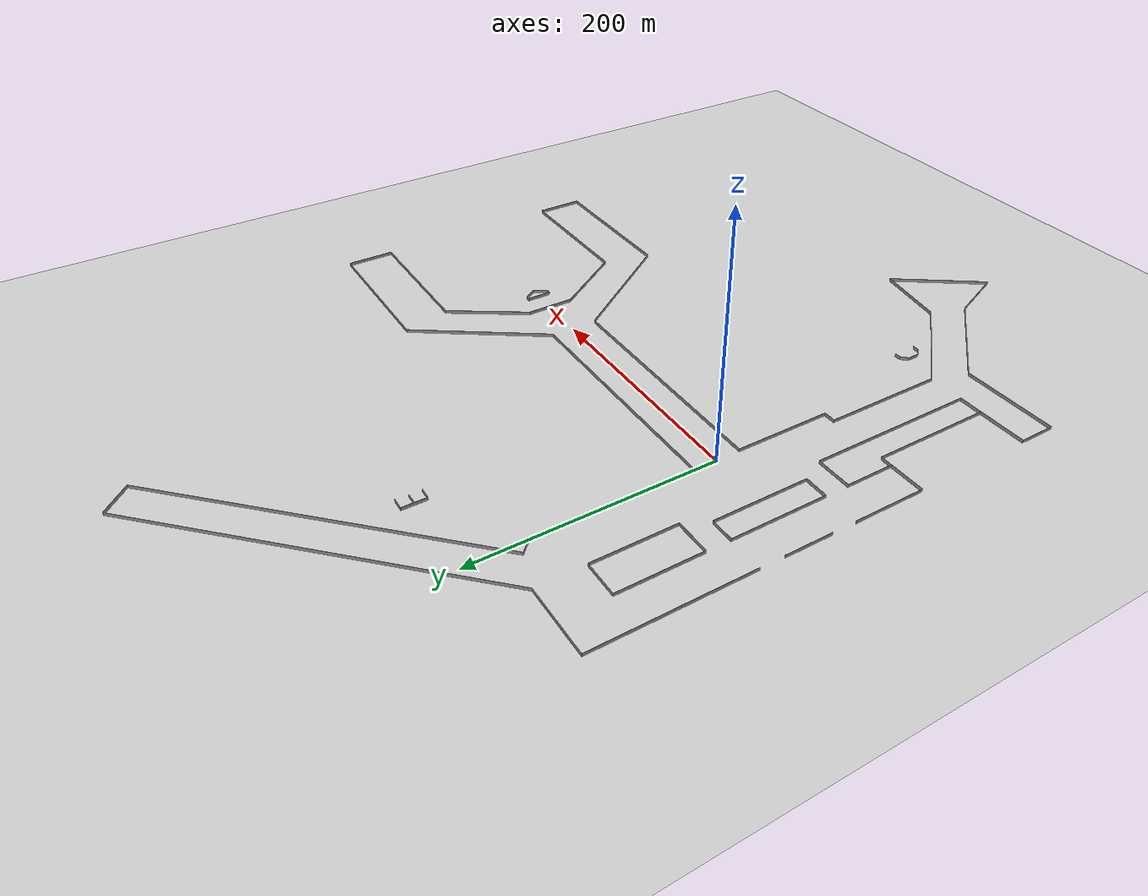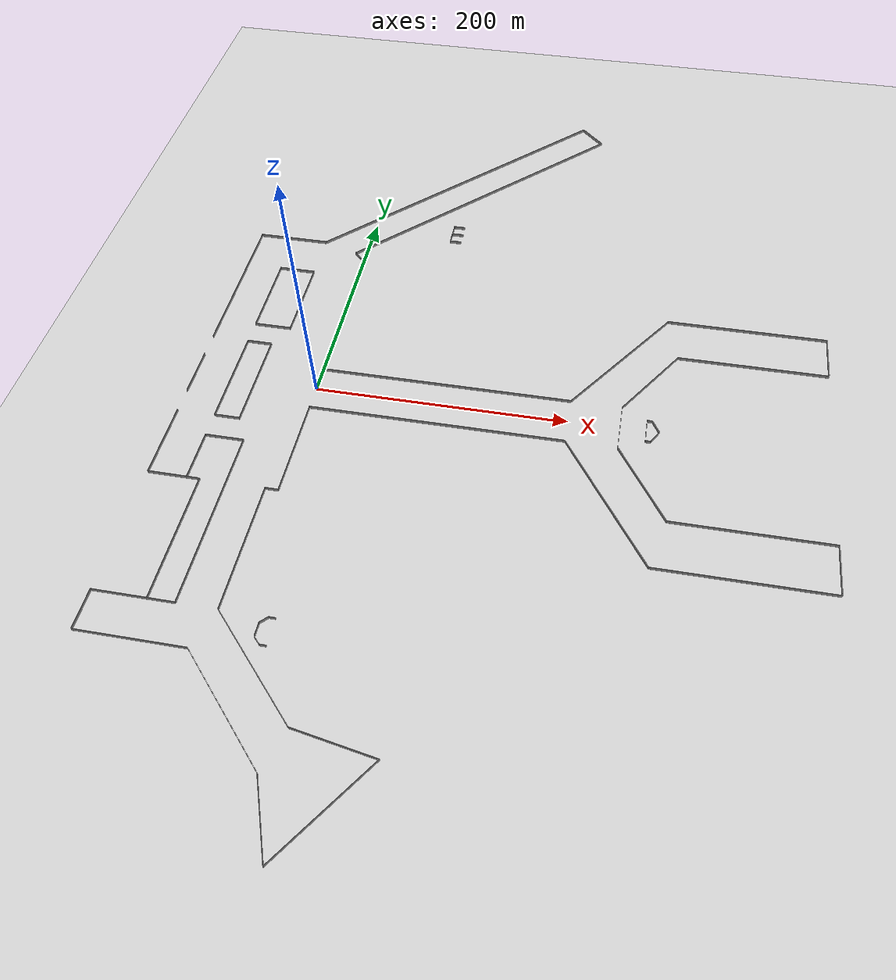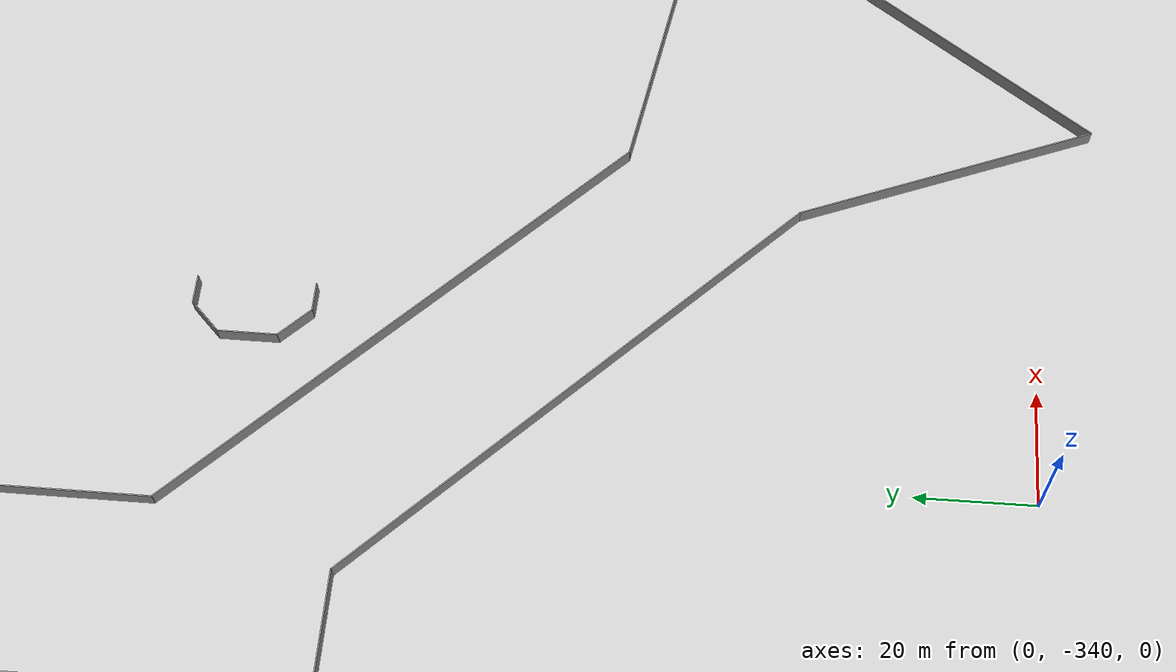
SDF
<?xml version="1.0" ?>

    <!-- this file is auto generated using pedsim_gazebo_plugin pkg -->
    <sdf version="1.5">
      <world name="default">

      <!-- Ground Plane -->

      <include>
        <uri>model://ground_plane</uri>
      </include>

      <include>
        <uri>model://sun</uri>
      </include>

     <model name='grey_wall_1'>
      <static>1</static>
      <link name='link'>

	  <pose frame=''>-60.0 -230.0  1.4 0 0 -0.0</pose>

        <collision name='collision'>
          <geometry>
            <box>

	     <size> 80.0 .2  2.8 </size>

      	   </box>
          </geometry>
          <max_contacts>10</max_contacts>
          <surface>
            <contact>
              <ode/>
            </contact>
            <bounce/>
            <friction>
              <torsional>
                <ode/>
              </torsional>
              <ode/>
            </friction>
          </surface>
        </collision>
        <visual name='visual'>
          <cast_shadows>0</cast_shadows>
          <geometry>
            <box>

	     <size> 80.0 .2  2.8 </size>

      	   </box>
       </geometry>
          <material>
            <script>
              <uri>model://grey_wall/materials/scripts</uri>
              <uri>model://grey_wall/materials/textures</uri>
              <name>vrc/grey_wall</name>
            </script>
          </material>
        </visual>
        <self_collide>0</self_collide>
        <enable_wind>0</enable_wind>
        <kinematic>0</kinematic>
      </link>
    </model>

     <model name='grey_wall_2'>
      <static>1</static>
      <link name='link'>

	  <pose frame=''>-70.0 -200.0  1.4 0 0 -0.0</pose>

        <collision name='collision'>
          <geometry>
            <box>

	     <size> 60.0 .2  2.8 </size>

      	   </box>
          </geometry>
          <max_contacts>10</max_contacts>
          <surface>
            <contact>
              <ode/>
            </contact>
            <bounce/>
            <friction>
              <torsional>
                <ode/>
              </torsional>
              <ode/>
            </friction>
          </surface>
        </collision>
        <visual name='visual'>
          <cast_shadows>0</cast_shadows>
          <geometry>
            <box>

	     <size> 60.0 .2  2.8 </size>

      	   </box>
       </geometry>
          <material>
            <script>
              <uri>model://grey_wall/materials/scripts</uri>
              <uri>model://grey_wall/materials/textures</uri>
              <name>vrc/grey_wall</name>
            </script>
          </material>
        </visual>
        <self_collide>0</self_collide>
        <enable_wind>0</enable_wind>
        <kinematic>0</kinematic>
      </link>
    </model>

     <model name='grey_wall_3'>
      <static>1</static>
      <link name='link'>

	  <pose frame=''>-80.0 -100.0  1.4 0 0 0.0</pose>

        <collision name='collision'>
          <geometry>
            <box>

	     <size> 40.0 .2  2.8 </size>

      	   </box>
          </geometry>
          <max_contacts>10</max_contacts>
          <surface>
            <contact>
              <ode/>
            </contact>
            <bounce/>
            <friction>
              <torsional>
                <ode/>
              </torsional>
              <ode/>
            </friction>
          </surface>
        </collision>
        <visual name='visual'>
          <cast_shadows>0</cast_shadows>
          <geometry>
            <box>

	     <size> 40.0 .2  2.8 </size>

      	   </box>
       </geometry>
          <material>
            <script>
              <uri>model://grey_wall/materials/scripts</uri>
              <uri>model://grey_wall/materials/textures</uri>
              <name>vrc/grey_wall</name>
            </script>
          </material>
        </visual>
        <self_collide>0</self_collide>
        <enable_wind>0</enable_wind>
        <kinematic>0</kinematic>
      </link>
    </model>

     <model name='grey_wall_4'>
      <static>1</static>
      <link name='link'>

	  <pose frame=''>-100.0 -70.0  1.4 0 0 1.57</pose>

        <collision name='collision'>
          <geometry>
            <box>

	     <size> 60.0 .2  2.8 </size>

      	   </box>
          </geometry>
          <max_contacts>10</max_contacts>
          <surface>
            <contact>
              <ode/>
            </contact>
            <bounce/>
            <friction>
              <torsional>
                <ode/>
              </torsional>
              <ode/>
            </friction>
          </surface>
        </collision>
        <visual name='visual'>
          <cast_shadows>0</cast_shadows>
          <geometry>
            <box>

	     <size> 60.0 .2  2.8 </size>

      	   </box>
       </geometry>
          <material>
            <script>
              <uri>model://grey_wall/materials/scripts</uri>
              <uri>model://grey_wall/materials/textures</uri>
              <name>vrc/grey_wall</name>
            </script>
          </material>
        </visual>
        <self_collide>0</self_collide>
        <enable_wind>0</enable_wind>
        <kinematic>0</kinematic>
      </link>
    </model>

     <model name='grey_wall_5'>
      <static>1</static>
      <link name='link'>

	  <pose frame=''>0.0 85.0  1.4 0 0 1.57</pose>

        <collision name='collision'>
          <geometry>
            <box>

	     <size> 130.0 .2  2.8 </size>

      	   </box>
          </geometry>
          <max_contacts>10</max_contacts>
          <surface>
            <contact>
              <ode/>
            </contact>
            <bounce/>
            <friction>
              <torsional>
                <ode/>
              </torsional>
              <ode/>
            </friction>
          </surface>
        </collision>
        <visual name='visual'>
          <cast_shadows>0</cast_shadows>
          <geometry>
            <box>

	     <size> 130.0 .2  2.8 </size>

      	   </box>
       </geometry>
          <material>
            <script>
              <uri>model://grey_wall/materials/scripts</uri>
              <uri>model://grey_wall/materials/textures</uri>
              <name>vrc/grey_wall</name>
            </script>
          </material>
        </visual>
        <self_collide>0</self_collide>
        <enable_wind>0</enable_wind>
        <kinematic>0</kinematic>
      </link>
    </model>

     <model name='grey_wall_6'>
      <static>1</static>
      <link name='link'>

	  <pose frame=''>-100.0 135.0  1.4 0 0 1.57</pose>

        <collision name='collision'>
          <geometry>
            <box>

	     <size> 70.0 .2  2.8 </size>

      	   </box>
          </geometry>
          <max_contacts>10</max_contacts>
          <surface>
            <contact>
              <ode/>
            </contact>
            <bounce/>
            <friction>
              <torsional>
                <ode/>
              </torsional>
              <ode/>
            </friction>
          </surface>
        </collision>
        <visual name='visual'>
          <cast_shadows>0</cast_shadows>
          <geometry>
            <box>

	     <size> 70.0 .2  2.8 </size>

      	   </box>
       </geometry>
          <material>
            <script>
              <uri>model://grey_wall/materials/scripts</uri>
              <uri>model://grey_wall/materials/textures</uri>
              <name>vrc/grey_wall</name>
            </script>
          </material>
        </visual>
        <self_collide>0</self_collide>
        <enable_wind>0</enable_wind>
        <kinematic>0</kinematic>
      </link>
    </model>

     <model name='grey_wall_7'>
      <static>1</static>
      <link name='link'>

	  <pose frame=''>-70.0 170.0  1.4 0 0 0.0</pose>

        <collision name='collision'>
          <geometry>
            <box>

	     <size> 60.0 .2  2.8 </size>

      	   </box>
          </geometry>
          <max_contacts>10</max_contacts>
          <surface>
            <contact>
              <ode/>
            </contact>
            <bounce/>
            <friction>
              <torsional>
                <ode/>
              </torsional>
              <ode/>
            </friction>
          </surface>
        </collision>
        <visual name='visual'>
          <cast_shadows>0</cast_shadows>
          <geometry>
            <box>

	     <size> 60.0 .2  2.8 </size>

      	   </box>
       </geometry>
          <material>
            <script>
              <uri>model://grey_wall/materials/scripts</uri>
              <uri>model://grey_wall/materials/textures</uri>
              <name>vrc/grey_wall</name>
            </script>
          </material>
        </visual>
        <self_collide>0</self_collide>
        <enable_wind>0</enable_wind>
        <kinematic>0</kinematic>
      </link>
    </model>

     <model name='grey_wall_8'>
      <static>1</static>
      <link name='link'>

	  <pose frame=''>100.0 -20.0  1.4 0 0 0.0</pose>

        <collision name='collision'>
          <geometry>
            <box>

	     <size> 200.0 .2  2.8 </size>

      	   </box>
          </geometry>
          <max_contacts>10</max_contacts>
          <surface>
            <contact>
              <ode/>
            </contact>
            <bounce/>
            <friction>
              <torsional>
                <ode/>
              </torsional>
              <ode/>
            </friction>
          </surface>
        </collision>
        <visual name='visual'>
          <cast_shadows>0</cast_shadows>
          <geometry>
            <box>

	     <size> 200.0 .2  2.8 </size>

      	   </box>
       </geometry>
          <material>
            <script>
              <uri>model://grey_wall/materials/scripts</uri>
              <uri>model://grey_wall/materials/textures</uri>
              <name>vrc/grey_wall</name>
            </script>
          </material>
        </visual>
        <self_collide>0</self_collide>
        <enable_wind>0</enable_wind>
        <kinematic>0</kinematic>
      </link>
    </model>

     <model name='grey_wall_9'>
      <static>1</static>
      <link name='link'>

	  <pose frame=''>100.0 20.0  1.4 0 0 0.0</pose>

        <collision name='collision'>
          <geometry>
            <box>

	     <size> 200.0 .2  2.8 </size>

      	   </box>
          </geometry>
          <max_contacts>10</max_contacts>
          <surface>
            <contact>
              <ode/>
            </contact>
            <bounce/>
            <friction>
              <torsional>
                <ode/>
              </torsional>
              <ode/>
            </friction>
          </surface>
        </collision>
        <visual name='visual'>
          <cast_shadows>0</cast_shadows>
          <geometry>
            <box>

	     <size> 200.0 .2  2.8 </size>

      	   </box>
       </geometry>
          <material>
            <script>
              <uri>model://grey_wall/materials/scripts</uri>
              <uri>model://grey_wall/materials/textures</uri>
              <name>vrc/grey_wall</name>
            </script>
          </material>
        </visual>
        <self_collide>0</self_collide>
        <enable_wind>0</enable_wind>
        <kinematic>0</kinematic>
      </link>
    </model>

     <model name='grey_wall_10'>
      <static>1</static>
      <link name='link'>

	  <pose frame=''>235.0 70.0  1.4 0 0 0.960070362406</pose>

        <collision name='collision'>
          <geometry>
            <box>

	     <size> 122.065556157 .2  2.8 </size>

      	   </box>
          </geometry>
          <max_contacts>10</max_contacts>
          <surface>
            <contact>
              <ode/>
            </contact>
            <bounce/>
            <friction>
              <torsional>
                <ode/>
              </torsional>
              <ode/>
            </friction>
          </surface>
        </collision>
        <visual name='visual'>
          <cast_shadows>0</cast_shadows>
          <geometry>
            <box>

	     <size> 122.065556157 .2  2.8 </size>

      	   </box>
       </geometry>
          <material>
            <script>
              <uri>model://grey_wall/materials/scripts</uri>
              <uri>model://grey_wall/materials/textures</uri>
              <name>vrc/grey_wall</name>
            </script>
          </material>
        </visual>
        <self_collide>0</self_collide>
        <enable_wind>0</enable_wind>
        <kinematic>0</kinematic>
      </link>
    </model>

     <model name='grey_wall_11'>
      <static>1</static>
      <link name='link'>

	  <pose frame=''>235.0 -70.0  1.4 0 0 -0.960070362406</pose>

        <collision name='collision'>
          <geometry>
            <box>

	     <size> 122.065556157 .2  2.8 </size>

      	   </box>
          </geometry>
          <max_contacts>10</max_contacts>
          <surface>
            <contact>
              <ode/>
            </contact>
            <bounce/>
            <friction>
              <torsional>
                <ode/>
              </torsional>
              <ode/>
            </friction>
          </surface>
        </collision>
        <visual name='visual'>
          <cast_shadows>0</cast_shadows>
          <geometry>
            <box>

	     <size> 122.065556157 .2  2.8 </size>

      	   </box>
       </geometry>
          <material>
            <script>
              <uri>model://grey_wall/materials/scripts</uri>
              <uri>model://grey_wall/materials/textures</uri>
              <name>vrc/grey_wall</name>
            </script>
          </material>
        </visual>
        <self_collide>0</self_collide>
        <enable_wind>0</enable_wind>
        <kinematic>0</kinematic>
      </link>
    </model>

     <model name='grey_wall_12'>
      <static>1</static>
      <link name='link'>

	  <pose frame=''>260.0 50.0  1.4 0 0 0.982793723247</pose>

        <collision name='collision'>
          <geometry>
            <box>

	     <size> 72.1110255093 .2  2.8 </size>

      	   </box>
          </geometry>
          <max_contacts>10</max_contacts>
          <surface>
            <contact>
              <ode/>
            </contact>
            <bounce/>
            <friction>
              <torsional>
                <ode/>
              </torsional>
              <ode/>
            </friction>
          </surface>
        </collision>
        <visual name='visual'>
          <cast_shadows>0</cast_shadows>
          <geometry>
            <box>

	     <size> 72.1110255093 .2  2.8 </size>

      	   </box>
       </geometry>
          <material>
            <script>
              <uri>model://grey_wall/materials/scripts</uri>
              <uri>model://grey_wall/materials/textures</uri>
              <name>vrc/grey_wall</name>
            </script>
          </material>
        </visual>
        <self_collide>0</self_collide>
        <enable_wind>0</enable_wind>
        <kinematic>0</kinematic>
      </link>
    </model>

     <model name='grey_wall_13'>
      <static>1</static>
      <link name='link'>

	  <pose frame=''>240.0 0.0  1.4 0 0 1.57</pose>

        <collision name='collision'>
          <geometry>
            <box>

	     <size> 40.0 .2  2.8 </size>

      	   </box>
          </geometry>
          <max_contacts>10</max_contacts>
          <surface>
            <contact>
              <ode/>
            </contact>
            <bounce/>
            <friction>
              <torsional>
                <ode/>
              </torsional>
              <ode/>
            </friction>
          </surface>
        </collision>
        <visual name='visual'>
          <cast_shadows>0</cast_shadows>
          <geometry>
            <box>

	     <size> 40.0 .2  2.8 </size>

      	   </box>
       </geometry>
          <material>
            <script>
              <uri>model://grey_wall/materials/scripts</uri>
              <uri>model://grey_wall/materials/textures</uri>
              <name>vrc/grey_wall</name>
            </script>
          </material>
        </visual>
        <self_collide>0</self_collide>
        <enable_wind>0</enable_wind>
        <kinematic>0</kinematic>
      </link>
    </model>

     <model name='grey_wall_14'>
      <static>1</static>
      <link name='link'>

	  <pose frame=''>260.0 -50.0  1.4 0 0 -0.982793723247</pose>

        <collision name='collision'>
          <geometry>
            <box>

	     <size> 72.1110255093 .2  2.8 </size>

      	   </box>
          </geometry>
          <max_contacts>10</max_contacts>
          <surface>
            <contact>
              <ode/>
            </contact>
            <bounce/>
            <friction>
              <torsional>
                <ode/>
              </torsional>
              <ode/>
            </friction>
          </surface>
        </collision>
        <visual name='visual'>
          <cast_shadows>0</cast_shadows>
          <geometry>
            <box>

	     <size> 72.1110255093 .2  2.8 </size>

      	   </box>
       </geometry>
          <material>
            <script>
              <uri>model://grey_wall/materials/scripts</uri>
              <uri>model://grey_wall/materials/textures</uri>
              <name>vrc/grey_wall</name>
            </script>
          </material>
        </visual>
        <self_collide>0</self_collide>
        <enable_wind>0</enable_wind>
        <kinematic>0</kinematic>
      </link>
    </model>

     <model name='grey_wall_15'>
      <static>1</static>
      <link name='link'>

	  <pose frame=''>0.0 -60.0  1.4 0 0 1.57</pose>

        <collision name='collision'>
          <geometry>
            <box>

	     <size> 80.0 .2  2.8 </size>

      	   </box>
          </geometry>
          <max_contacts>10</max_contacts>
          <surface>
            <contact>
              <ode/>
            </contact>
            <bounce/>
            <friction>
              <torsional>
                <ode/>
              </torsional>
              <ode/>
            </friction>
          </surface>
        </collision>
        <visual name='visual'>
          <cast_shadows>0</cast_shadows>
          <geometry>
            <box>

	     <size> 80.0 .2  2.8 </size>

      	   </box>
       </geometry>
          <material>
            <script>
              <uri>model://grey_wall/materials/scripts</uri>
              <uri>model://grey_wall/materials/textures</uri>
              <name>vrc/grey_wall</name>
            </script>
          </material>
        </visual>
        <self_collide>0</self_collide>
        <enable_wind>0</enable_wind>
        <kinematic>0</kinematic>
      </link>
    </model>

     <model name='grey_wall_16'>
      <static>1</static>
      <link name='link'>

	  <pose frame=''>340.0 80.0  1.4 0 0 0.0</pose>

        <collision name='collision'>
          <geometry>
            <box>

	     <size> 120.0 .2  2.8 </size>

      	   </box>
          </geometry>
          <max_contacts>10</max_contacts>
          <surface>
            <contact>
              <ode/>
            </contact>
            <bounce/>
            <friction>
              <torsional>
                <ode/>
              </torsional>
              <ode/>
            </friction>
          </surface>
        </collision>
        <visual name='visual'>
          <cast_shadows>0</cast_shadows>
          <geometry>
            <box>

	     <size> 120.0 .2  2.8 </size>

      	   </box>
       </geometry>
          <material>
            <script>
              <uri>model://grey_wall/materials/scripts</uri>
              <uri>model://grey_wall/materials/textures</uri>
              <name>vrc/grey_wall</name>
            </script>
          </material>
        </visual>
        <self_collide>0</self_collide>
        <enable_wind>0</enable_wind>
        <kinematic>0</kinematic>
      </link>
    </model>

     <model name='grey_wall_17'>
      <static>1</static>
      <link name='link'>

	  <pose frame=''>335.0 120.0  1.4 0 0 0.0</pose>

        <collision name='collision'>
          <geometry>
            <box>

	     <size> 130.0 .2  2.8 </size>

      	   </box>
          </geometry>
          <max_contacts>10</max_contacts>
          <surface>
            <contact>
              <ode/>
            </contact>
            <bounce/>
            <friction>
              <torsional>
                <ode/>
              </torsional>
              <ode/>
            </friction>
          </surface>
        </collision>
        <visual name='visual'>
          <cast_shadows>0</cast_shadows>
          <geometry>
            <box>

	     <size> 130.0 .2  2.8 </size>

      	   </box>
       </geometry>
          <material>
            <script>
              <uri>model://grey_wall/materials/scripts</uri>
              <uri>model://grey_wall/materials/textures</uri>
              <name>vrc/grey_wall</name>
            </script>
          </material>
        </visual>
        <self_collide>0</self_collide>
        <enable_wind>0</enable_wind>
        <kinematic>0</kinematic>
      </link>
    </model>

     <model name='grey_wall_18'>
      <static>1</static>
      <link name='link'>

	  <pose frame=''>340.0 -80.0  1.4 0 0 0.0</pose>

        <collision name='collision'>
          <geometry>
            <box>

	     <size> 120.0 .2  2.8 </size>

      	   </box>
          </geometry>
          <max_contacts>10</max_contacts>
          <surface>
            <contact>
              <ode/>
            </contact>
            <bounce/>
            <friction>
              <torsional>
                <ode/>
              </torsional>
              <ode/>
            </friction>
          </surface>
        </collision>
        <visual name='visual'>
          <cast_shadows>0</cast_shadows>
          <geometry>
            <box>

	     <size> 120.0 .2  2.8 </size>

      	   </box>
       </geometry>
          <material>
            <script>
              <uri>model://grey_wall/materials/scripts</uri>
              <uri>model://grey_wall/materials/textures</uri>
              <name>vrc/grey_wall</name>
            </script>
          </material>
        </visual>
        <self_collide>0</self_collide>
        <enable_wind>0</enable_wind>
        <kinematic>0</kinematic>
      </link>
    </model>

     <model name='grey_wall_19'>
      <static>1</static>
      <link name='link'>

	  <pose frame=''>335.0 -120.0  1.4 0 0 0.0</pose>

        <collision name='collision'>
          <geometry>
            <box>

	     <size> 130.0 .2  2.8 </size>

      	   </box>
          </geometry>
          <max_contacts>10</max_contacts>
          <surface>
            <contact>
              <ode/>
            </contact>
            <bounce/>
            <friction>
              <torsional>
                <ode/>
              </torsional>
              <ode/>
            </friction>
          </surface>
        </collision>
        <visual name='visual'>
          <cast_shadows>0</cast_shadows>
          <geometry>
            <box>

	     <size> 130.0 .2  2.8 </size>

      	   </box>
       </geometry>
          <material>
            <script>
              <uri>model://grey_wall/materials/scripts</uri>
              <uri>model://grey_wall/materials/textures</uri>
              <name>vrc/grey_wall</name>
            </script>
          </material>
        </visual>
        <self_collide>0</self_collide>
        <enable_wind>0</enable_wind>
        <kinematic>0</kinematic>
      </link>
    </model>

     <model name='grey_wall_20'>
      <static>1</static>
      <link name='link'>

	  <pose frame=''>-10.0 -150.0  1.4 0 0 1.57</pose>

        <collision name='collision'>
          <geometry>
            <box>

	     <size> 100.0 .2  2.8 </size>

      	   </box>
          </geometry>
          <max_contacts>10</max_contacts>
          <surface>
            <contact>
              <ode/>
            </contact>
            <bounce/>
            <friction>
              <torsional>
                <ode/>
              </torsional>
              <ode/>
            </friction>
          </surface>
        </collision>
        <visual name='visual'>
          <cast_shadows>0</cast_shadows>
          <geometry>
            <box>

	     <size> 100.0 .2  2.8 </size>

      	   </box>
       </geometry>
          <material>
            <script>
              <uri>model://grey_wall/materials/scripts</uri>
              <uri>model://grey_wall/materials/textures</uri>
              <name>vrc/grey_wall</name>
            </script>
          </material>
        </visual>
        <self_collide>0</self_collide>
        <enable_wind>0</enable_wind>
        <kinematic>0</kinematic>
      </link>
    </model>

     <model name='grey_wall_21'>
      <static>1</static>
      <link name='link'>

	  <pose frame=''>-60.0 -150.0  1.4 0 0 1.57</pose>

        <collision name='collision'>
          <geometry>
            <box>

	     <size> 100.0 .2  2.8 </size>

      	   </box>
          </geometry>
          <max_contacts>10</max_contacts>
          <surface>
            <contact>
              <ode/>
            </contact>
            <bounce/>
            <friction>
              <torsional>
                <ode/>
              </torsional>
              <ode/>
            </friction>
          </surface>
        </collision>
        <visual name='visual'>
          <cast_shadows>0</cast_shadows>
          <geometry>
            <box>

	     <size> 100.0 .2  2.8 </size>

      	   </box>
       </geometry>
          <material>
            <script>
              <uri>model://grey_wall/materials/scripts</uri>
              <uri>model://grey_wall/materials/textures</uri>
              <name>vrc/grey_wall</name>
            </script>
          </material>
        </visual>
        <self_collide>0</self_collide>
        <enable_wind>0</enable_wind>
        <kinematic>0</kinematic>
      </link>
    </model>

     <model name='grey_wall_22'>
      <static>1</static>
      <link name='link'>

	  <pose frame=''>-100.0 -215.0  1.4 0 0 1.57</pose>

        <collision name='collision'>
          <geometry>
            <box>

	     <size> 30.0 .2  2.8 </size>

      	   </box>
          </geometry>
          <max_contacts>10</max_contacts>
          <surface>
            <contact>
              <ode/>
            </contact>
            <bounce/>
            <friction>
              <torsional>
                <ode/>
              </torsional>
              <ode/>
            </friction>
          </surface>
        </collision>
        <visual name='visual'>
          <cast_shadows>0</cast_shadows>
          <geometry>
            <box>

	     <size> 30.0 .2  2.8 </size>

      	   </box>
       </geometry>
          <material>
            <script>
              <uri>model://grey_wall/materials/scripts</uri>
              <uri>model://grey_wall/materials/textures</uri>
              <name>vrc/grey_wall</name>
            </script>
          </material>
        </visual>
        <self_collide>0</self_collide>
        <enable_wind>0</enable_wind>
        <kinematic>0</kinematic>
      </link>
    </model>

     <model name='grey_wall_23'>
      <static>1</static>
      <link name='link'>

	  <pose frame=''>400.0 100.0  1.4 0 0 1.57</pose>

        <collision name='collision'>
          <geometry>
            <box>

	     <size> 40.0 .2  2.8 </size>

      	   </box>
          </geometry>
          <max_contacts>10</max_contacts>
          <surface>
            <contact>
              <ode/>
            </contact>
            <bounce/>
            <friction>
              <torsional>
                <ode/>
              </torsional>
              <ode/>
            </friction>
          </surface>
        </collision>
        <visual name='visual'>
          <cast_shadows>0</cast_shadows>
          <geometry>
            <box>

	     <size> 40.0 .2  2.8 </size>

      	   </box>
       </geometry>
          <material>
            <script>
              <uri>model://grey_wall/materials/scripts</uri>
              <uri>model://grey_wall/materials/textures</uri>
              <name>vrc/grey_wall</name>
            </script>
          </material>
        </visual>
        <self_collide>0</self_collide>
        <enable_wind>0</enable_wind>
        <kinematic>0</kinematic>
      </link>
    </model>

     <model name='grey_wall_24'>
      <static>1</static>
      <link name='link'>

	  <pose frame=''>400.0 -100.0  1.4 0 0 1.57</pose>

        <collision name='collision'>
          <geometry>
            <box>

	     <size> 40.0 .2  2.8 </size>

      	   </box>
          </geometry>
          <max_contacts>10</max_contacts>
          <surface>
            <contact>
              <ode/>
            </contact>
            <bounce/>
            <friction>
              <torsional>
                <ode/>
              </torsional>
              <ode/>
            </friction>
          </surface>
        </collision>
        <visual name='visual'>
          <cast_shadows>0</cast_shadows>
          <geometry>
            <box>

	     <size> 40.0 .2  2.8 </size>

      	   </box>
       </geometry>
          <material>
            <script>
              <uri>model://grey_wall/materials/scripts</uri>
              <uri>model://grey_wall/materials/textures</uri>
              <name>vrc/grey_wall</name>
            </script>
          </material>
        </visual>
        <self_collide>0</self_collide>
        <enable_wind>0</enable_wind>
        <kinematic>0</kinematic>
      </link>
    </model>

     <model name='grey_wall_25'>
      <static>1</static>
      <link name='link'>

	  <pose frame=''>-5.0 -100.0  1.4 0 0 0.0</pose>

        <collision name='collision'>
          <geometry>
            <box>

	     <size> 10.0 .2  2.8 </size>

      	   </box>
          </geometry>
          <max_contacts>10</max_contacts>
          <surface>
            <contact>
              <ode/>
            </contact>
            <bounce/>
            <friction>
              <torsional>
                <ode/>
              </torsional>
              <ode/>
            </friction>
          </surface>
        </collision>
        <visual name='visual'>
          <cast_shadows>0</cast_shadows>
          <geometry>
            <box>

	     <size> 10.0 .2  2.8 </size>

      	   </box>
       </geometry>
          <material>
            <script>
              <uri>model://grey_wall/materials/scripts</uri>
              <uri>model://grey_wall/materials/textures</uri>
              <name>vrc/grey_wall</name>
            </script>
          </material>
        </visual>
        <self_collide>0</self_collide>
        <enable_wind>0</enable_wind>
        <kinematic>0</kinematic>
      </link>
    </model>

     <model name='grey_wall_26'>
      <static>1</static>
      <link name='link'>

	  <pose frame=''>25.0 -235.0  1.4 0 0 -0.785398163397</pose>

        <collision name='collision'>
          <geometry>
            <box>

	     <size> 98.9949493661 .2  2.8 </size>

      	   </box>
          </geometry>
          <max_contacts>10</max_contacts>
          <surface>
            <contact>
              <ode/>
            </contact>
            <bounce/>
            <friction>
              <torsional>
                <ode/>
              </torsional>
              <ode/>
            </friction>
          </surface>
        </collision>
        <visual name='visual'>
          <cast_shadows>0</cast_shadows>
          <geometry>
            <box>

	     <size> 98.9949493661 .2  2.8 </size>

      	   </box>
       </geometry>
          <material>
            <script>
              <uri>model://grey_wall/materials/scripts</uri>
              <uri>model://grey_wall/materials/textures</uri>
              <name>vrc/grey_wall</name>
            </script>
          </material>
        </visual>
        <self_collide>0</self_collide>
        <enable_wind>0</enable_wind>
        <kinematic>0</kinematic>
      </link>
    </model>

     <model name='grey_wall_27'>
      <static>1</static>
      <link name='link'>

	  <pose frame=''>15.0 -265.0  1.4 0 0 -0.785398163397</pose>

        <collision name='collision'>
          <geometry>
            <box>

	     <size> 98.9949493661 .2  2.8 </size>

      	   </box>
          </geometry>
          <max_contacts>10</max_contacts>
          <surface>
            <contact>
              <ode/>
            </contact>
            <bounce/>
            <friction>
              <torsional>
                <ode/>
              </torsional>
              <ode/>
            </friction>
          </surface>
        </collision>
        <visual name='visual'>
          <cast_shadows>0</cast_shadows>
          <geometry>
            <box>

	     <size> 98.9949493661 .2  2.8 </size>

      	   </box>
       </geometry>
          <material>
            <script>
              <uri>model://grey_wall/materials/scripts</uri>
              <uri>model://grey_wall/materials/textures</uri>
              <name>vrc/grey_wall</name>
            </script>
          </material>
        </visual>
        <self_collide>0</self_collide>
        <enable_wind>0</enable_wind>
        <kinematic>0</kinematic>
      </link>
    </model>

     <model name='grey_wall_28'>
      <static>1</static>
      <link name='link'>

	  <pose frame=''>90.0 -275.0  1.4 0 0 -0.165148677415</pose>

        <collision name='collision'>
          <geometry>
            <box>

	     <size> 60.827625303 .2  2.8 </size>

      	   </box>
          </geometry>
          <max_contacts>10</max_contacts>
          <surface>
            <contact>
              <ode/>
            </contact>
            <bounce/>
            <friction>
              <torsional>
                <ode/>
              </torsional>
              <ode/>
            </friction>
          </surface>
        </collision>
        <visual name='visual'>
          <cast_shadows>0</cast_shadows>
          <geometry>
            <box>

	     <size> 60.827625303 .2  2.8 </size>

      	   </box>
       </geometry>
          <material>
            <script>
              <uri>model://grey_wall/materials/scripts</uri>
              <uri>model://grey_wall/materials/textures</uri>
              <name>vrc/grey_wall</name>
            </script>
          </material>
        </visual>
        <self_collide>0</self_collide>
        <enable_wind>0</enable_wind>
        <kinematic>0</kinematic>
      </link>
    </model>

     <model name='grey_wall_29'>
      <static>1</static>
      <link name='link'>

	  <pose frame=''>60.0 -325.0  1.4 0 0 -1.19028994968</pose>

        <collision name='collision'>
          <geometry>
            <box>

	     <size> 53.8516480713 .2  2.8 </size>

      	   </box>
          </geometry>
          <max_contacts>10</max_contacts>
          <surface>
            <contact>
              <ode/>
            </contact>
            <bounce/>
            <friction>
              <torsional>
                <ode/>
              </torsional>
              <ode/>
            </friction>
          </surface>
        </collision>
        <visual name='visual'>
          <cast_shadows>0</cast_shadows>
          <geometry>
            <box>

	     <size> 53.8516480713 .2  2.8 </size>

      	   </box>
       </geometry>
          <material>
            <script>
              <uri>model://grey_wall/materials/scripts</uri>
              <uri>model://grey_wall/materials/textures</uri>
              <name>vrc/grey_wall</name>
            </script>
          </material>
        </visual>
        <self_collide>0</self_collide>
        <enable_wind>0</enable_wind>
        <kinematic>0</kinematic>
      </link>
    </model>

     <model name='grey_wall_30'>
      <static>1</static>
      <link name='link'>

	  <pose frame=''>95.0 -315.0  1.4 0 0 0.950546840812</pose>

        <collision name='collision'>
          <geometry>
            <box>

	     <size> 86.0232526704 .2  2.8 </size>

      	   </box>
          </geometry>
          <max_contacts>10</max_contacts>
          <surface>
            <contact>
              <ode/>
            </contact>
            <bounce/>
            <friction>
              <torsional>
                <ode/>
              </torsional>
              <ode/>
            </friction>
          </surface>
        </collision>
        <visual name='visual'>
          <cast_shadows>0</cast_shadows>
          <geometry>
            <box>

	     <size> 86.0232526704 .2  2.8 </size>

      	   </box>
       </geometry>
          <material>
            <script>
              <uri>model://grey_wall/materials/scripts</uri>
              <uri>model://grey_wall/materials/textures</uri>
              <name>vrc/grey_wall</name>
            </script>
          </material>
        </visual>
        <self_collide>0</self_collide>
        <enable_wind>0</enable_wind>
        <kinematic>0</kinematic>
      </link>
    </model>

     <model name='grey_wall_31'>
      <static>1</static>
      <link name='link'>

	  <pose frame=''>90.0 260.0  1.4 0 0 0.785398163397</pose>

        <collision name='collision'>
          <geometry>
            <box>

	     <size> 282.842712475 .2  2.8 </size>

      	   </box>
          </geometry>
          <max_contacts>10</max_contacts>
          <surface>
            <contact>
              <ode/>
            </contact>
            <bounce/>
            <friction>
              <torsional>
                <ode/>
              </torsional>
              <ode/>
            </friction>
          </surface>
        </collision>
        <visual name='visual'>
          <cast_shadows>0</cast_shadows>
          <geometry>
            <box>

	     <size> 282.842712475 .2  2.8 </size>

      	   </box>
       </geometry>
          <material>
            <script>
              <uri>model://grey_wall/materials/scripts</uri>
              <uri>model://grey_wall/materials/textures</uri>
              <name>vrc/grey_wall</name>
            </script>
          </material>
        </visual>
        <self_collide>0</self_collide>
        <enable_wind>0</enable_wind>
        <kinematic>0</kinematic>
      </link>
    </model>

     <model name='grey_wall_32'>
      <static>1</static>
      <link name='link'>

	  <pose frame=''>65.0 275.0  1.4 0 0 0.785398163397</pose>

        <collision name='collision'>
          <geometry>
            <box>

	     <size> 296.984848098 .2  2.8 </size>

      	   </box>
          </geometry>
          <max_contacts>10</max_contacts>
          <surface>
            <contact>
              <ode/>
            </contact>
            <bounce/>
            <friction>
              <torsional>
                <ode/>
              </torsional>
              <ode/>
            </friction>
          </surface>
        </collision>
        <visual name='visual'>
          <cast_shadows>0</cast_shadows>
          <geometry>
            <box>

	     <size> 296.984848098 .2  2.8 </size>

      	   </box>
       </geometry>
          <material>
            <script>
              <uri>model://grey_wall/materials/scripts</uri>
              <uri>model://grey_wall/materials/textures</uri>
              <name>vrc/grey_wall</name>
            </script>
          </material>
        </visual>
        <self_collide>0</self_collide>
        <enable_wind>0</enable_wind>
        <kinematic>0</kinematic>
      </link>
    </model>

     <model name='grey_wall_33'>
      <static>1</static>
      <link name='link'>

	  <pose frame=''>180.0 370.0  1.4 0 0 -0.785398163397</pose>

        <collision name='collision'>
          <geometry>
            <box>

	     <size> 28.2842712475 .2  2.8 </size>

      	   </box>
          </geometry>
          <max_contacts>10</max_contacts>
          <surface>
            <contact>
              <ode/>
            </contact>
            <bounce/>
            <friction>
              <torsional>
                <ode/>
              </torsional>
              <ode/>
            </friction>
          </surface>
        </collision>
        <visual name='visual'>
          <cast_shadows>0</cast_shadows>
          <geometry>
            <box>

	     <size> 28.2842712475 .2  2.8 </size>

      	   </box>
       </geometry>
          <material>
            <script>
              <uri>model://grey_wall/materials/scripts</uri>
              <uri>model://grey_wall/materials/textures</uri>
              <name>vrc/grey_wall</name>
            </script>
          </material>
        </visual>
        <self_collide>0</self_collide>
        <enable_wind>0</enable_wind>
        <kinematic>0</kinematic>
      </link>
    </model>

     <model name='grey_wall_34'>
      <static>1</static>
      <link name='link'>

	  <pose frame=''>-70.0 -80.0  1.4 0 0 1.57</pose>

        <collision name='collision'>
          <geometry>
            <box>

	     <size> 40.0 .2  2.8 </size>

      	   </box>
          </geometry>
          <max_contacts>10</max_contacts>
          <surface>
            <contact>
              <ode/>
            </contact>
            <bounce/>
            <friction>
              <torsional>
                <ode/>
              </torsional>
              <ode/>
            </friction>
          </surface>
        </collision>
        <visual name='visual'>
          <cast_shadows>0</cast_shadows>
          <geometry>
            <box>

	     <size> 40.0 .2  2.8 </size>

      	   </box>
       </geometry>
          <material>
            <script>
              <uri>model://grey_wall/materials/scripts</uri>
              <uri>model://grey_wall/materials/textures</uri>
              <name>vrc/grey_wall</name>
            </script>
          </material>
        </visual>
        <self_collide>0</self_collide>
        <enable_wind>0</enable_wind>
        <kinematic>0</kinematic>
      </link>
    </model>

     <model name='grey_wall_35'>
      <static>1</static>
      <link name='link'>

	  <pose frame=''>-70.0 0.0  1.4 0 0 1.57</pose>

        <collision name='collision'>
          <geometry>
            <box>

	     <size> 80.0 .2  2.8 </size>

      	   </box>
          </geometry>
          <max_contacts>10</max_contacts>
          <surface>
            <contact>
              <ode/>
            </contact>
            <bounce/>
            <friction>
              <torsional>
                <ode/>
              </torsional>
              <ode/>
            </friction>
          </surface>
        </collision>
        <visual name='visual'>
          <cast_shadows>0</cast_shadows>
          <geometry>
            <box>

	     <size> 80.0 .2  2.8 </size>

      	   </box>
       </geometry>
          <material>
            <script>
              <uri>model://grey_wall/materials/scripts</uri>
              <uri>model://grey_wall/materials/textures</uri>
              <name>vrc/grey_wall</name>
            </script>
          </material>
        </visual>
        <self_collide>0</self_collide>
        <enable_wind>0</enable_wind>
        <kinematic>0</kinematic>
      </link>
    </model>

     <model name='grey_wall_36'>
      <static>1</static>
      <link name='link'>

	  <pose frame=''>-70.0 80.0  1.4 0 0 1.57</pose>

        <collision name='collision'>
          <geometry>
            <box>

	     <size> 40.0 .2  2.8 </size>

      	   </box>
          </geometry>
          <max_contacts>10</max_contacts>
          <surface>
            <contact>
              <ode/>
            </contact>
            <bounce/>
            <friction>
              <torsional>
                <ode/>
              </torsional>
              <ode/>
            </friction>
          </surface>
        </collision>
        <visual name='visual'>
          <cast_shadows>0</cast_shadows>
          <geometry>
            <box>

	     <size> 40.0 .2  2.8 </size>

      	   </box>
       </geometry>
          <material>
            <script>
              <uri>model://grey_wall/materials/scripts</uri>
              <uri>model://grey_wall/materials/textures</uri>
              <name>vrc/grey_wall</name>
            </script>
          </material>
        </visual>
        <self_collide>0</self_collide>
        <enable_wind>0</enable_wind>
        <kinematic>0</kinematic>
      </link>
    </model>

     <model name='grey_wall_37'>
      <static>1</static>
      <link name='link'>

	  <pose frame=''>-55.0 60.0  1.4 0 0 0.0</pose>

        <collision name='collision'>
          <geometry>
            <box>

	     <size> 30.0 .2  2.8 </size>

      	   </box>
          </geometry>
          <max_contacts>10</max_contacts>
          <surface>
            <contact>
              <ode/>
            </contact>
            <bounce/>
            <friction>
              <torsional>
                <ode/>
              </torsional>
              <ode/>
            </friction>
          </surface>
        </collision>
        <visual name='visual'>
          <cast_shadows>0</cast_shadows>
          <geometry>
            <box>

	     <size> 30.0 .2  2.8 </size>

      	   </box>
       </geometry>
          <material>
            <script>
              <uri>model://grey_wall/materials/scripts</uri>
              <uri>model://grey_wall/materials/textures</uri>
              <name>vrc/grey_wall</name>
            </script>
          </material>
        </visual>
        <self_collide>0</self_collide>
        <enable_wind>0</enable_wind>
        <kinematic>0</kinematic>
      </link>
    </model>

     <model name='grey_wall_38'>
      <static>1</static>
      <link name='link'>

	  <pose frame=''>-60.0 40.0  1.4 0 0 0.0</pose>

        <collision name='collision'>
          <geometry>
            <box>

	     <size> 20.0 .2  2.8 </size>

      	   </box>
          </geometry>
          <max_contacts>10</max_contacts>
          <surface>
            <contact>
              <ode/>
            </contact>
            <bounce/>
            <friction>
              <torsional>
                <ode/>
              </torsional>
              <ode/>
            </friction>
          </surface>
        </collision>
        <visual name='visual'>
          <cast_shadows>0</cast_shadows>
          <geometry>
            <box>

	     <size> 20.0 .2  2.8 </size>

      	   </box>
       </geometry>
          <material>
            <script>
              <uri>model://grey_wall/materials/scripts</uri>
              <uri>model://grey_wall/materials/textures</uri>
              <name>vrc/grey_wall</name>
            </script>
          </material>
        </visual>
        <self_collide>0</self_collide>
        <enable_wind>0</enable_wind>
        <kinematic>0</kinematic>
      </link>
    </model>

     <model name='grey_wall_39'>
      <static>1</static>
      <link name='link'>

	  <pose frame=''>-60.0 -40.0  1.4 0 0 0.0</pose>

        <collision name='collision'>
          <geometry>
            <box>

	     <size> 20.0 .2  2.8 </size>

      	   </box>
          </geometry>
          <max_contacts>10</max_contacts>
          <surface>
            <contact>
              <ode/>
            </contact>
            <bounce/>
            <friction>
              <torsional>
                <ode/>
              </torsional>
              <ode/>
            </friction>
          </surface>
        </collision>
        <visual name='visual'>
          <cast_shadows>0</cast_shadows>
          <geometry>
            <box>

	     <size> 20.0 .2  2.8 </size>

      	   </box>
       </geometry>
          <material>
            <script>
              <uri>model://grey_wall/materials/scripts</uri>
              <uri>model://grey_wall/materials/textures</uri>
              <name>vrc/grey_wall</name>
            </script>
          </material>
        </visual>
        <self_collide>0</self_collide>
        <enable_wind>0</enable_wind>
        <kinematic>0</kinematic>
      </link>
    </model>

     <model name='grey_wall_40'>
      <static>1</static>
      <link name='link'>

	  <pose frame=''>-55.0 -60.0  1.4 0 0 0.0</pose>

        <collision name='collision'>
          <geometry>
            <box>

	     <size> 30.0 .2  2.8 </size>

      	   </box>
          </geometry>
          <max_contacts>10</max_contacts>
          <surface>
            <contact>
              <ode/>
            </contact>
            <bounce/>
            <friction>
              <torsional>
                <ode/>
              </torsional>
              <ode/>
            </friction>
          </surface>
        </collision>
        <visual name='visual'>
          <cast_shadows>0</cast_shadows>
          <geometry>
            <box>

	     <size> 30.0 .2  2.8 </size>

      	   </box>
       </geometry>
          <material>
            <script>
              <uri>model://grey_wall/materials/scripts</uri>
              <uri>model://grey_wall/materials/textures</uri>
              <name>vrc/grey_wall</name>
            </script>
          </material>
        </visual>
        <self_collide>0</self_collide>
        <enable_wind>0</enable_wind>
        <kinematic>0</kinematic>
      </link>
    </model>

     <model name='grey_wall_41'>
      <static>1</static>
      <link name='link'>

	  <pose frame=''>-50.0 0.0  1.4 0 0 1.57</pose>

        <collision name='collision'>
          <geometry>
            <box>

	     <size> 80.0 .2  2.8 </size>

      	   </box>
          </geometry>
          <max_contacts>10</max_contacts>
          <surface>
            <contact>
              <ode/>
            </contact>
            <bounce/>
            <friction>
              <torsional>
                <ode/>
              </torsional>
              <ode/>
            </friction>
          </surface>
        </collision>
        <visual name='visual'>
          <cast_shadows>0</cast_shadows>
          <geometry>
            <box>

	     <size> 80.0 .2  2.8 </size>

      	   </box>
       </geometry>
          <material>
            <script>
              <uri>model://grey_wall/materials/scripts</uri>
              <uri>model://grey_wall/materials/textures</uri>
              <name>vrc/grey_wall</name>
            </script>
          </material>
        </visual>
        <self_collide>0</self_collide>
        <enable_wind>0</enable_wind>
        <kinematic>0</kinematic>
      </link>
    </model>

     <model name='grey_wall_42'>
      <static>1</static>
      <link name='link'>

	  <pose frame=''>-40.0 -130.0  1.4 0 0 1.57</pose>

        <collision name='collision'>
          <geometry>
            <box>

	     <size> 140.0 .2  2.8 </size>

      	   </box>
          </geometry>
          <max_contacts>10</max_contacts>
          <surface>
            <contact>
              <ode/>
            </contact>
            <bounce/>
            <friction>
              <torsional>
                <ode/>
              </torsional>
              <ode/>
            </friction>
          </surface>
        </collision>
        <visual name='visual'>
          <cast_shadows>0</cast_shadows>
          <geometry>
            <box>

	     <size> 140.0 .2  2.8 </size>

      	   </box>
       </geometry>
          <material>
            <script>
              <uri>model://grey_wall/materials/scripts</uri>
              <uri>model://grey_wall/materials/textures</uri>
              <name>vrc/grey_wall</name>
            </script>
          </material>
        </visual>
        <self_collide>0</self_collide>
        <enable_wind>0</enable_wind>
        <kinematic>0</kinematic>
      </link>
    </model>

     <model name='grey_wall_43'>
      <static>1</static>
      <link name='link'>

	  <pose frame=''>-100.0 70.0  1.4 0 0 1.57</pose>

        <collision name='collision'>
          <geometry>
            <box>

	     <size> 60.0 .2  2.8 </size>

      	   </box>
          </geometry>
          <max_contacts>10</max_contacts>
          <surface>
            <contact>
              <ode/>
            </contact>
            <bounce/>
            <friction>
              <torsional>
                <ode/>
              </torsional>
              <ode/>
            </friction>
          </surface>
        </collision>
        <visual name='visual'>
          <cast_shadows>0</cast_shadows>
          <geometry>
            <box>

	     <size> 60.0 .2  2.8 </size>

      	   </box>
       </geometry>
          <material>
            <script>
              <uri>model://grey_wall/materials/scripts</uri>
              <uri>model://grey_wall/materials/textures</uri>
              <name>vrc/grey_wall</name>
            </script>
          </material>
        </visual>
        <self_collide>0</self_collide>
        <enable_wind>0</enable_wind>
        <kinematic>0</kinematic>
      </link>
    </model>

     <model name='grey_wall_44'>
      <static>1</static>
      <link name='link'>

	  <pose frame=''>-40.0 95.0  1.4 0 0 1.57</pose>

        <collision name='collision'>
          <geometry>
            <box>

	     <size> 70.0 .2  2.8 </size>

      	   </box>
          </geometry>
          <max_contacts>10</max_contacts>
          <surface>
            <contact>
              <ode/>
            </contact>
            <bounce/>
            <friction>
              <torsional>
                <ode/>
              </torsional>
              <ode/>
            </friction>
          </surface>
        </collision>
        <visual name='visual'>
          <cast_shadows>0</cast_shadows>
          <geometry>
            <box>

	     <size> 70.0 .2  2.8 </size>

      	   </box>
       </geometry>
          <material>
            <script>
              <uri>model://grey_wall/materials/scripts</uri>
              <uri>model://grey_wall/materials/textures</uri>
              <name>vrc/grey_wall</name>
            </script>
          </material>
        </visual>
        <self_collide>0</self_collide>
        <enable_wind>0</enable_wind>
        <kinematic>0</kinematic>
      </link>
    </model>

     <model name='grey_wall_45'>
      <static>1</static>
      <link name='link'>

	  <pose frame=''>-100.0 0.0  1.4 0 0 1.57</pose>

        <collision name='collision'>
          <geometry>
            <box>

	     <size> 40.0 .2  2.8 </size>

      	   </box>
          </geometry>
          <max_contacts>10</max_contacts>
          <surface>
            <contact>
              <ode/>
            </contact>
            <bounce/>
            <friction>
              <torsional>
                <ode/>
              </torsional>
              <ode/>
            </friction>
          </surface>
        </collision>
        <visual name='visual'>
          <cast_shadows>0</cast_shadows>
          <geometry>
            <box>

	     <size> 40.0 .2  2.8 </size>

      	   </box>
       </geometry>
          <material>
            <script>
              <uri>model://grey_wall/materials/scripts</uri>
              <uri>model://grey_wall/materials/textures</uri>
              <name>vrc/grey_wall</name>
            </script>
          </material>
        </visual>
        <self_collide>0</self_collide>
        <enable_wind>0</enable_wind>
        <kinematic>0</kinematic>
      </link>
    </model>

     <model name='grey_wall_46'>
      <static>1</static>
      <link name='link'>

	  <pose frame=''>-70.0 115.0  1.4 0 0 1.57</pose>

        <collision name='collision'>
          <geometry>
            <box>

	     <size> 30.0 .2  2.8 </size>

      	   </box>
          </geometry>
          <max_contacts>10</max_contacts>
          <surface>
            <contact>
              <ode/>
            </contact>
            <bounce/>
            <friction>
              <torsional>
                <ode/>
              </torsional>
              <ode/>
            </friction>
          </surface>
        </collision>
        <visual name='visual'>
          <cast_shadows>0</cast_shadows>
          <geometry>
            <box>

	     <size> 30.0 .2  2.8 </size>

      	   </box>
       </geometry>
          <material>
            <script>
              <uri>model://grey_wall/materials/scripts</uri>
              <uri>model://grey_wall/materials/textures</uri>
              <name>vrc/grey_wall</name>
            </script>
          </material>
        </visual>
        <self_collide>0</self_collide>
        <enable_wind>0</enable_wind>
        <kinematic>0</kinematic>
      </link>
    </model>

     <model name='grey_wall_47'>
      <static>1</static>
      <link name='link'>

	  <pose frame=''>-55.0 130.0  1.4 0 0 -0.0</pose>

        <collision name='collision'>
          <geometry>
            <box>

	     <size> 30.0 .2  2.8 </size>

      	   </box>
          </geometry>
          <max_contacts>10</max_contacts>
          <surface>
            <contact>
              <ode/>
            </contact>
            <bounce/>
            <friction>
              <torsional>
                <ode/>
              </torsional>
              <ode/>
            </friction>
          </surface>
        </collision>
        <visual name='visual'>
          <cast_shadows>0</cast_shadows>
          <geometry>
            <box>

	     <size> 30.0 .2  2.8 </size>

      	   </box>
       </geometry>
          <material>
            <script>
              <uri>model://grey_wall/materials/scripts</uri>
              <uri>model://grey_wall/materials/textures</uri>
              <name>vrc/grey_wall</name>
            </script>
          </material>
        </visual>
        <self_collide>0</self_collide>
        <enable_wind>0</enable_wind>
        <kinematic>0</kinematic>
      </link>
    </model>

     <model name='grey_wall_48'>
      <static>1</static>
      <link name='link'>

	  <pose frame=''>75.0 210.0  1.4 0 0 0.0</pose>

        <collision name='collision'>
          <geometry>
            <box>

	     <size> 10.0 .2  2.8 </size>

      	   </box>
          </geometry>
          <max_contacts>10</max_contacts>
          <surface>
            <contact>
              <ode/>
            </contact>
            <bounce/>
            <friction>
              <torsional>
                <ode/>
              </torsional>
              <ode/>
            </friction>
          </surface>
        </collision>
        <visual name='visual'>
          <cast_shadows>0</cast_shadows>
          <geometry>
            <box>

	     <size> 10.0 .2  2.8 </size>

      	   </box>
       </geometry>
          <material>
            <script>
              <uri>model://grey_wall/materials/scripts</uri>
              <uri>model://grey_wall/materials/textures</uri>
              <name>vrc/grey_wall</name>
            </script>
          </material>
        </visual>
        <self_collide>0</self_collide>
        <enable_wind>0</enable_wind>
        <kinematic>0</kinematic>
      </link>
    </model>

     <model name='grey_wall_49'>
      <static>1</static>
      <link name='link'>

	  <pose frame=''>75.0 200.0  1.4 0 0 0.0</pose>

        <collision name='collision'>
          <geometry>
            <box>

	     <size> 10.0 .2  2.8 </size>

      	   </box>
          </geometry>
          <max_contacts>10</max_contacts>
          <surface>
            <contact>
              <ode/>
            </contact>
            <bounce/>
            <friction>
              <torsional>
                <ode/>
              </torsional>
              <ode/>
            </friction>
          </surface>
        </collision>
        <visual name='visual'>
          <cast_shadows>0</cast_shadows>
          <geometry>
            <box>

	     <size> 10.0 .2  2.8 </size>

      	   </box>
       </geometry>
          <material>
            <script>
              <uri>model://grey_wall/materials/scripts</uri>
              <uri>model://grey_wall/materials/textures</uri>
              <name>vrc/grey_wall</name>
            </script>
          </material>
        </visual>
        <self_collide>0</self_collide>
        <enable_wind>0</enable_wind>
        <kinematic>0</kinematic>
      </link>
    </model>

     <model name='grey_wall_50'>
      <static>1</static>
      <link name='link'>

	  <pose frame=''>75.0 190.0  1.4 0 0 0.0</pose>

        <collision name='collision'>
          <geometry>
            <box>

	     <size> 10.0 .2  2.8 </size>

      	   </box>
          </geometry>
          <max_contacts>10</max_contacts>
          <surface>
            <contact>
              <ode/>
            </contact>
            <bounce/>
            <friction>
              <torsional>
                <ode/>
              </torsional>
              <ode/>
            </friction>
          </surface>
        </collision>
        <visual name='visual'>
          <cast_shadows>0</cast_shadows>
          <geometry>
            <box>

	     <size> 10.0 .2  2.8 </size>

      	   </box>
       </geometry>
          <material>
            <script>
              <uri>model://grey_wall/materials/scripts</uri>
              <uri>model://grey_wall/materials/textures</uri>
              <name>vrc/grey_wall</name>
            </script>
          </material>
        </visual>
        <self_collide>0</self_collide>
        <enable_wind>0</enable_wind>
        <kinematic>0</kinematic>
      </link>
    </model>

     <model name='grey_wall_51'>
      <static>1</static>
      <link name='link'>

	  <pose frame=''>70.0 200.0  1.4 0 0 1.57</pose>

        <collision name='collision'>
          <geometry>
            <box>

	     <size> 20.0 .2  2.8 </size>

      	   </box>
          </geometry>
          <max_contacts>10</max_contacts>
          <surface>
            <contact>
              <ode/>
            </contact>
            <bounce/>
            <friction>
              <torsional>
                <ode/>
              </torsional>
              <ode/>
            </friction>
          </surface>
        </collision>
        <visual name='visual'>
          <cast_shadows>0</cast_shadows>
          <geometry>
            <box>

	     <size> 20.0 .2  2.8 </size>

      	   </box>
       </geometry>
          <material>
            <script>
              <uri>model://grey_wall/materials/scripts</uri>
              <uri>model://grey_wall/materials/textures</uri>
              <name>vrc/grey_wall</name>
            </script>
          </material>
        </visual>
        <self_collide>0</self_collide>
        <enable_wind>0</enable_wind>
        <kinematic>0</kinematic>
      </link>
    </model>

     <model name='grey_wall_52'>
      <static>1</static>
      <link name='link'>

	  <pose frame=''>260.0 0.0  1.4 0 0 1.57</pose>

        <collision name='collision'>
          <geometry>
            <box>

	     <size> 20.0 .2  2.8 </size>

      	   </box>
          </geometry>
          <max_contacts>10</max_contacts>
          <surface>
            <contact>
              <ode/>
            </contact>
            <bounce/>
            <friction>
              <torsional>
                <ode/>
              </torsional>
              <ode/>
            </friction>
          </surface>
        </collision>
        <visual name='visual'>
          <cast_shadows>0</cast_shadows>
          <geometry>
            <box>

	     <size> 20.0 .2  2.8 </size>

      	   </box>
       </geometry>
          <material>
            <script>
              <uri>model://grey_wall/materials/scripts</uri>
              <uri>model://grey_wall/materials/textures</uri>
              <name>vrc/grey_wall</name>
            </script>
          </material>
        </visual>
        <self_collide>0</self_collide>
        <enable_wind>0</enable_wind>
        <kinematic>0</kinematic>
      </link>
    </model>

     <model name='grey_wall_53'>
      <static>1</static>
      <link name='link'>

	  <pose frame=''>267.0 5.0  1.4 0 0 -1.03037682652</pose>

        <collision name='collision'>
          <geometry>
            <box>

	     <size> 11.6619037897 .2  2.8 </size>

      	   </box>
          </geometry>
          <max_contacts>10</max_contacts>
          <surface>
            <contact>
              <ode/>
            </contact>
            <bounce/>
            <friction>
              <torsional>
                <ode/>
              </torsional>
              <ode/>
            </friction>
          </surface>
        </collision>
        <visual name='visual'>
          <cast_shadows>0</cast_shadows>
          <geometry>
            <box>

	     <size> 11.6619037897 .2  2.8 </size>

      	   </box>
       </geometry>
          <material>
            <script>
              <uri>model://grey_wall/materials/scripts</uri>
              <uri>model://grey_wall/materials/textures</uri>
              <name>vrc/grey_wall</name>
            </script>
          </material>
        </visual>
        <self_collide>0</self_collide>
        <enable_wind>0</enable_wind>
        <kinematic>0</kinematic>
      </link>
    </model>

     <model name='grey_wall_54'>
      <static>1</static>
      <link name='link'>

	  <pose frame=''>267.0 -5.0  1.4 0 0 1.03037682652</pose>

        <collision name='collision'>
          <geometry>
            <box>

	     <size> 11.6619037897 .2  2.8 </size>

      	   </box>
          </geometry>
          <max_contacts>10</max_contacts>
          <surface>
            <contact>
              <ode/>
            </contact>
            <bounce/>
            <friction>
              <torsional>
                <ode/>
              </torsional>
              <ode/>
            </friction>
          </surface>
        </collision>
        <visual name='visual'>
          <cast_shadows>0</cast_shadows>
          <geometry>
            <box>

	     <size> 11.6619037897 .2  2.8 </size>

      	   </box>
       </geometry>
          <material>
            <script>
              <uri>model://grey_wall/materials/scripts</uri>
              <uri>model://grey_wall/materials/textures</uri>
              <name>vrc/grey_wall</name>
            </script>
          </material>
        </visual>
        <self_collide>0</self_collide>
        <enable_wind>0</enable_wind>
        <kinematic>0</kinematic>
      </link>
    </model>

     <model name='grey_wall_55'>
      <static>1</static>
      <link name='link'>

	  <pose frame=''>27.5 -200.0  1.4 0 0 0.0</pose>

        <collision name='collision'>
          <geometry>
            <box>

	     <size> 5.0 .2  2.8 </size>

      	   </box>
          </geometry>
          <max_contacts>10</max_contacts>
          <surface>
            <contact>
              <ode/>
            </contact>
            <bounce/>
            <friction>
              <torsional>
                <ode/>
              </torsional>
              <ode/>
            </friction>
          </surface>
        </collision>
        <visual name='visual'>
          <cast_shadows>0</cast_shadows>
          <geometry>
            <box>

	     <size> 5.0 .2  2.8 </size>

      	   </box>
       </geometry>
          <material>
            <script>
              <uri>model://grey_wall/materials/scripts</uri>
              <uri>model://grey_wall/materials/textures</uri>
              <name>vrc/grey_wall</name>
            </script>
          </material>
        </visual>
        <self_collide>0</self_collide>
        <enable_wind>0</enable_wind>
        <kinematic>0</kinematic>
      </link>
    </model>

     <model name='grey_wall_56'>
      <static>1</static>
      <link name='link'>

	  <pose frame=''>20.0 -210.0  1.4 0 0 1.57</pose>

        <collision name='collision'>
          <geometry>
            <box>

	     <size> 10.0 .2  2.8 </size>

      	   </box>
          </geometry>
          <max_contacts>10</max_contacts>
          <surface>
            <contact>
              <ode/>
            </contact>
            <bounce/>
            <friction>
              <torsional>
                <ode/>
              </torsional>
              <ode/>
            </friction>
          </surface>
        </collision>
        <visual name='visual'>
          <cast_shadows>0</cast_shadows>
          <geometry>
            <box>

	     <size> 10.0 .2  2.8 </size>

      	   </box>
       </geometry>
          <material>
            <script>
              <uri>model://grey_wall/materials/scripts</uri>
              <uri>model://grey_wall/materials/textures</uri>
              <name>vrc/grey_wall</name>
            </script>
          </material>
        </visual>
        <self_collide>0</self_collide>
        <enable_wind>0</enable_wind>
        <kinematic>0</kinematic>
      </link>
    </model>

     <model name='grey_wall_57'>
      <static>1</static>
      <link name='link'>

	  <pose frame=''>27.5 -220.0  1.4 0 0 0.0</pose>

        <collision name='collision'>
          <geometry>
            <box>

	     <size> 5.0 .2  2.8 </size>

      	   </box>
          </geometry>
          <max_contacts>10</max_contacts>
          <surface>
            <contact>
              <ode/>
            </contact>
            <bounce/>
            <friction>
              <torsional>
                <ode/>
              </torsional>
              <ode/>
            </friction>
          </surface>
        </collision>
        <visual name='visual'>
          <cast_shadows>0</cast_shadows>
          <geometry>
            <box>

	     <size> 5.0 .2  2.8 </size>

      	   </box>
       </geometry>
          <material>
            <script>
              <uri>model://grey_wall/materials/scripts</uri>
              <uri>model://grey_wall/materials/textures</uri>
              <name>vrc/grey_wall</name>
            </script>
          </material>
        </visual>
        <self_collide>0</self_collide>
        <enable_wind>0</enable_wind>
        <kinematic>0</kinematic>
      </link>
    </model>

     <model name='grey_wall_58'>
      <static>1</static>
      <link name='link'>

	  <pose frame=''>-5.0 155.0  1.4 0 0 -0.785398163397</pose>

        <collision name='collision'>
          <geometry>
            <box>

	     <size> 14.1421356237 .2  2.8 </size>

      	   </box>
          </geometry>
          <max_contacts>10</max_contacts>
          <surface>
            <contact>
              <ode/>
            </contact>
            <bounce/>
            <friction>
              <torsional>
                <ode/>
              </torsional>
              <ode/>
            </friction>
          </surface>
        </collision>
        <visual name='visual'>
          <cast_shadows>0</cast_shadows>
          <geometry>
            <box>

	     <size> 14.1421356237 .2  2.8 </size>

      	   </box>
       </geometry>
          <material>
            <script>
              <uri>model://grey_wall/materials/scripts</uri>
              <uri>model://grey_wall/materials/textures</uri>
              <name>vrc/grey_wall</name>
            </script>
          </material>
        </visual>
        <self_collide>0</self_collide>
        <enable_wind>0</enable_wind>
        <kinematic>0</kinematic>
      </link>
    </model>

     <model name='grey_wall_59'>
      <static>1</static>
      <link name='link'>

	  <pose frame=''>262.0 10.0  1.4 0 0 0.0</pose>

        <collision name='collision'>
          <geometry>
            <box>

	     <size> 4.0 .2  2.8 </size>

      	   </box>
          </geometry>
          <max_contacts>10</max_contacts>
          <surface>
            <contact>
              <ode/>
            </contact>
            <bounce/>
            <friction>
              <torsional>
                <ode/>
              </torsional>
              <ode/>
            </friction>
          </surface>
        </collision>
        <visual name='visual'>
          <cast_shadows>0</cast_shadows>
          <geometry>
            <box>

	     <size> 4.0 .2  2.8 </size>

      	   </box>
       </geometry>
          <material>
            <script>
              <uri>model://grey_wall/materials/scripts</uri>
              <uri>model://grey_wall/materials/textures</uri>
              <name>vrc/grey_wall</name>
            </script>
          </material>
        </visual>
        <self_collide>0</self_collide>
        <enable_wind>0</enable_wind>
        <kinematic>0</kinematic>
      </link>
    </model>

     <model name='grey_wall_60'>
      <static>1</static>
      <link name='link'>

	  <pose frame=''>262.0 -10.0  1.4 0 0 -0.0</pose>

        <collision name='collision'>
          <geometry>
            <box>

	     <size> 4.0 .2  2.8 </size>

      	   </box>
          </geometry>
          <max_contacts>10</max_contacts>
          <surface>
            <contact>
              <ode/>
            </contact>
            <bounce/>
            <friction>
              <torsional>
                <ode/>
              </torsional>
              <ode/>
            </friction>
          </surface>
        </collision>
        <visual name='visual'>
          <cast_shadows>0</cast_shadows>
          <geometry>
            <box>

	     <size> 4.0 .2  2.8 </size>

      	   </box>
       </geometry>
          <material>
            <script>
              <uri>model://grey_wall/materials/scripts</uri>
              <uri>model://grey_wall/materials/textures</uri>
              <name>vrc/grey_wall</name>
            </script>
          </material>
        </visual>
        <self_collide>0</self_collide>
        <enable_wind>0</enable_wind>
        <kinematic>0</kinematic>
      </link>
    </model>

     <model name='grey_wall_61'>
      <static>1</static>
      <link name='link'>

	  <pose frame=''>22.5 -202.5  1.4 0 0 0.785398163397</pose>

        <collision name='collision'>
          <geometry>
            <box>

	     <size> 7.07106781187 .2  2.8 </size>

      	   </box>
          </geometry>
          <max_contacts>10</max_contacts>
          <surface>
            <contact>
              <ode/>
            </contact>
            <bounce/>
            <friction>
              <torsional>
                <ode/>
              </torsional>
              <ode/>
            </friction>
          </surface>
        </collision>
        <visual name='visual'>
          <cast_shadows>0</cast_shadows>
          <geometry>
            <box>

	     <size> 7.07106781187 .2  2.8 </size>

      	   </box>
       </geometry>
          <material>
            <script>
              <uri>model://grey_wall/materials/scripts</uri>
              <uri>model://grey_wall/materials/textures</uri>
              <name>vrc/grey_wall</name>
            </script>
          </material>
        </visual>
        <self_collide>0</self_collide>
        <enable_wind>0</enable_wind>
        <kinematic>0</kinematic>
      </link>
    </model>

     <model name='grey_wall_62'>
      <static>1</static>
      <link name='link'>

	  <pose frame=''>22.5 -217.5  1.4 0 0 -0.785398163397</pose>

        <collision name='collision'>
          <geometry>
            <box>

	     <size> 7.07106781187 .2  2.8 </size>

      	   </box>
          </geometry>
          <max_contacts>10</max_contacts>
          <surface>
            <contact>
              <ode/>
            </contact>
            <bounce/>
            <friction>
              <torsional>
                <ode/>
              </torsional>
              <ode/>
            </friction>
          </surface>
        </collision>
        <visual name='visual'>
          <cast_shadows>0</cast_shadows>
          <geometry>
            <box>

	     <size> 7.07106781187 .2  2.8 </size>

      	   </box>
       </geometry>
          <material>
            <script>
              <uri>model://grey_wall/materials/scripts</uri>
              <uri>model://grey_wall/materials/textures</uri>
              <name>vrc/grey_wall</name>
            </script>
          </material>
        </visual>
        <self_collide>0</self_collide>
        <enable_wind>0</enable_wind>
        <kinematic>0</kinematic>
      </link>
    </model>

            <plugin name="ActorPosesPlugin" filename="libActorPosesPlugin.dylib">
        </plugin>

      </world>
    </sdf>
